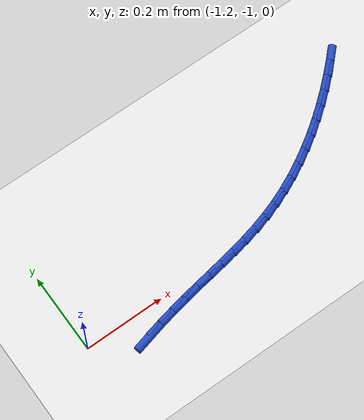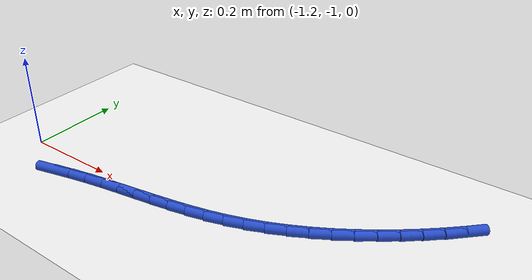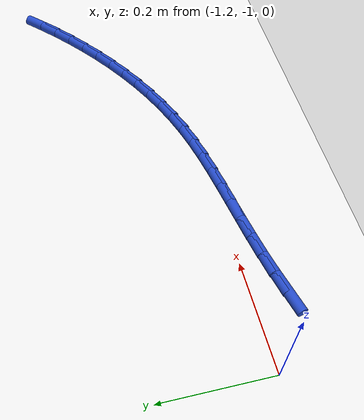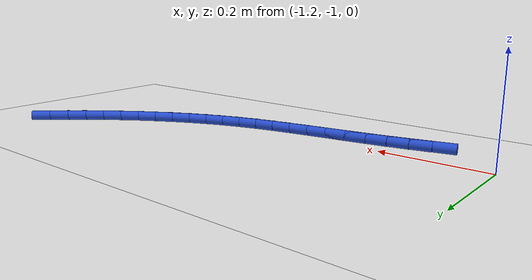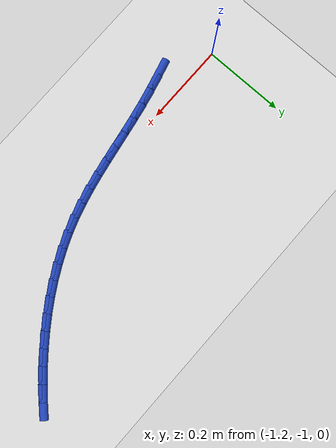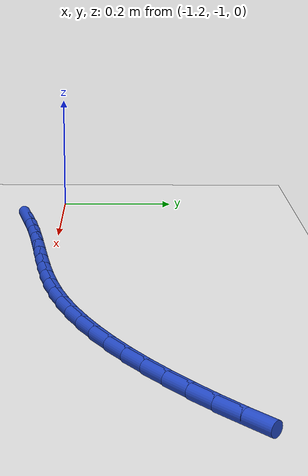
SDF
<sdf version="1.6">
 <world name="default">
  <model name="ground_plane">
   <static>1</static>
   <link name="link">
    <collision name="collision">
     <geometry><plane><normal>0 0 1</normal><size>100 100</size></plane></geometry>
     <surface><friction><ode><mu>100</mu><mu2>50</mu2></ode></friction></surface>
    </collision>
    <visual name="visual">
     <cast_shadows>0</cast_shadows>
     <geometry><plane><normal>0 0 1</normal><size>100 100</size></plane></geometry>
     <material>
      <script><uri>file://media/materials/scripts/gazebo.material</uri><name>Gazebo/WhiteGlow</name></script>
     </material>
    </visual>
   </link>
  </model>
  <model name="line">
   <link name="link_127">
    <pose>-1.0753905970154458 -1.0602221454270837 0.01 0 1.57 0.2446414388735093</pose>
    <collision name="collision">
     <geometry><cylinder><radius>0.01</radius><length>0.08</length></cylinder></geometry>
    </collision>
    <visual name="visual">
     <material>
      <script><name>Gazebo/Blue</name><uri>file://media/materials/scripts/gazebo.material</uri></script>
     </material>
     <geometry><cylinder><radius>0.01</radius><length>0.08</length></cylinder></geometry>
    </visual>
   </link>
   <link name="link_128">
    <pose>-1.0359513318143347 -1.0503764590551607 0.01 0 1.57 0.21848661092332922</pose>
    <collision name="collision">
     <geometry><cylinder><radius>0.01</radius><length>0.08</length></cylinder></geometry>
    </collision>
    <visual name="visual">
     <material>
      <script><name>Gazebo/Blue</name><uri>file://media/materials/scripts/gazebo.material</uri></script>
     </material>
     <geometry><cylinder><radius>0.01</radius><length>0.08</length></cylinder></geometry>
    </visual>
   </link>
   <link name="link_129">
    <pose>-0.9967384514135729 -1.0416699882878897 0.01 0 1.57 0.1916154545095524</pose>
    <collision name="collision">
     <geometry><cylinder><radius>0.01</radius><length>0.08</length></cylinder></geometry>
    </collision>
    <visual name="visual">
     <material>
      <script><name>Gazebo/Blue</name><uri>file://media/materials/scripts/gazebo.material</uri></script>
     </material>
     <geometry><cylinder><radius>0.01</radius><length>0.08</length></cylinder></geometry>
    </visual>
   </link>
   <link name="link_130">
    <pose>-0.9578282462225324 -1.03412158105417 0.01 0 1.57 0.17374351097224258</pose>
    <collision name="collision">
     <geometry><cylinder><radius>0.01</radius><length>0.08</length></cylinder></geometry>
    </collision>
    <visual name="visual">
     <material>
      <script><name>Gazebo/Blue</name><uri>file://media/materials/scripts/gazebo.material</uri></script>
     </material>
     <geometry><cylinder><radius>0.01</radius><length>0.08</length></cylinder></geometry>
    </visual>
   </link>
   <link name="link_131">
    <pose>-0.9192453555109423 -1.027349776918828 0.01 0 1.57 0.16540925854999883</pose>
    <collision name="collision">
     <geometry><cylinder><radius>0.01</radius><length>0.08</length></cylinder></geometry>
    </collision>
    <visual name="visual">
     <material>
      <script><name>Gazebo/Blue</name><uri>file://media/materials/scripts/gazebo.material</uri></script>
     </material>
     <geometry><cylinder><radius>0.01</radius><length>0.08</length></cylinder></geometry>
    </visual>
   </link>
   <link name="link_132">
    <pose>-0.8810137063531301 -1.0209675957664144 0.01 0 1.57 0.16695045699998512</pose>
    <collision name="collision">
     <geometry><cylinder><radius>0.01</radius><length>0.08</length></cylinder></geometry>
    </collision>
    <visual name="visual">
     <material>
      <script><name>Gazebo/Blue</name><uri>file://media/materials/scripts/gazebo.material</uri></script>
     </material>
     <geometry><cylinder><radius>0.01</radius><length>0.08</length></cylinder></geometry>
    </visual>
   </link>
   <link name="link_133">
    <pose>-0.8431572258234206 -1.0145880574814785 0.01 0 1.57 0.17865005076567997</pose>
    <collision name="collision">
     <geometry><cylinder><radius>0.01</radius><length>0.08</length></cylinder></geometry>
    </collision>
    <visual name="visual">
     <material>
      <script><name>Gazebo/Blue</name><uri>file://media/materials/scripts/gazebo.material</uri></script>
     </material>
     <geometry><cylinder><radius>0.01</radius><length>0.08</length></cylinder></geometry>
    </visual>
   </link>
   <link name="link_134">
    <pose>-0.8056998409961406 -1.0078241819485714 0.01 0 1.57 0.20072496692861364</pose>
    <collision name="collision">
     <geometry><cylinder><radius>0.01</radius><length>0.08</length></cylinder></geometry>
    </collision>
    <visual name="visual">
     <material>
      <script><name>Gazebo/Blue</name><uri>file://media/materials/scripts/gazebo.material</uri></script>
     </material>
     <geometry><cylinder><radius>0.01</radius><length>0.08</length></cylinder></geometry>
    </visual>
   </link>
   <link name="link_135">
    <pose>-0.7686654789456158 -1.0002889890522428 0.01 0 1.57 0.2332827698555533</pose>
    <collision name="collision">
     <geometry><cylinder><radius>0.01</radius><length>0.08</length></cylinder></geometry>
    </collision>
    <visual name="visual">
     <material>
      <script><name>Gazebo/Blue</name><uri>file://media/materials/scripts/gazebo.material</uri></script>
     </material>
     <geometry><cylinder><radius>0.01</radius><length>0.08</length></cylinder></geometry>
    </visual>
   </link>
   <link name="link_136">
    <pose>-0.7320780667461717 -0.9915954986770434 0.01 0 1.57 0.2762443799120441</pose>
    <collision name="collision">
     <geometry><cylinder><radius>0.01</radius><length>0.08</length></cylinder></geometry>
    </collision>
    <visual name="visual">
     <material>
      <script><name>Gazebo/Blue</name><uri>file://media/materials/scripts/gazebo.material</uri></script>
     </material>
     <geometry><cylinder><radius>0.01</radius><length>0.08</length></cylinder></geometry>
    </visual>
   </link>
   <link name="link_137">
    <pose>-0.695961531472136 -0.9813567307075234 0.01 0 1.57 0.32859518819931266</pose>
    <collision name="collision">
     <geometry><cylinder><radius>0.01</radius><length>0.08</length></cylinder></geometry>
    </collision>
    <visual name="visual">
     <material>
      <script><name>Gazebo/Blue</name><uri>file://media/materials/scripts/gazebo.material</uri></script>
     </material>
     <geometry><cylinder><radius>0.01</radius><length>0.08</length></cylinder></geometry>
    </visual>
   </link>
   <link name="link_138">
    <pose>-0.6603403828868466 -0.9692114866384136 0.01 0 1.57 0.38266561041639147</pose>
    <collision name="collision">
     <geometry><cylinder><radius>0.01</radius><length>0.08</length></cylinder></geometry>
    </collision>
    <visual name="visual">
     <material>
      <script><name>Gazebo/Blue</name><uri>file://media/materials/scripts/gazebo.material</uri></script>
     </material>
     <geometry><cylinder><radius>0.01</radius><length>0.08</length></cylinder></geometry>
    </visual>
   </link>
   <link name="link_139">
    <pose>-0.6252456180044683 -0.9550856023316668 0.01 0 1.57 0.43390810572431826</pose>
    <collision name="collision">
     <geometry><cylinder><radius>0.01</radius><length>0.08</length></cylinder></geometry>
    </collision>
    <visual name="visual">
     <material>
      <script><name>Gazebo/Blue</name><uri>file://media/materials/scripts/gazebo.material</uri></script>
     </material>
     <geometry><cylinder><radius>0.01</radius><length>0.08</length></cylinder></geometry>
    </visual>
   </link>
   <link name="link_140">
    <pose>-0.5907122870149611 -0.9390842501325081 0.01 0 1.57 0.48233985325401263</pose>
    <collision name="collision">
     <geometry><cylinder><radius>0.01</radius><length>0.08</length></cylinder></geometry>
    </collision>
    <visual name="visual">
     <material>
      <script><name>Gazebo/Blue</name><uri>file://media/materials/scripts/gazebo.material</uri></script>
     </material>
     <geometry><cylinder><radius>0.01</radius><length>0.08</length></cylinder></geometry>
    </visual>
   </link>
   <link name="link_141">
    <pose>-0.5567755019648215 -0.9213153392854077 0.01 0 1.57 0.528087205657602</pose>
    <collision name="collision">
     <geometry><cylinder><radius>0.01</radius><length>0.08</length></cylinder></geometry>
    </collision>
    <visual name="visual">
     <material>
      <script><name>Gazebo/Blue</name><uri>file://media/materials/scripts/gazebo.material</uri></script>
     </material>
     <geometry><cylinder><radius>0.01</radius><length>0.08</length></cylinder></geometry>
    </visual>
   </link>
   <link name="link_142">
    <pose>-0.523470374900545 -0.9018867790348346 0.01 0 1.57 0.5713049483004274</pose>
    <collision name="collision">
     <geometry><cylinder><radius>0.01</radius><length>0.08</length></cylinder></geometry>
    </collision>
    <visual name="visual">
     <material>
      <script><name>Gazebo/Blue</name><uri>file://media/materials/scripts/gazebo.material</uri></script>
     </material>
     <geometry><cylinder><radius>0.01</radius><length>0.08</length></cylinder></geometry>
    </visual>
   </link>
   <link name="link_143">
    <pose>-0.4908320178686295 -0.8809064786252601 0.01 0 1.57 0.6121661063324303</pose>
    <collision name="collision">
     <geometry><cylinder><radius>0.01</radius><length>0.08</length></cylinder></geometry>
    </collision>
    <visual name="visual">
     <material>
      <script><name>Gazebo/Blue</name><uri>file://media/materials/scripts/gazebo.material</uri></script>
     </material>
     <geometry><cylinder><radius>0.01</radius><length>0.08</length></cylinder></geometry>
    </visual>
   </link>
   <link name="link_144">
    <pose>-0.45889554291557055 -0.8584823473011532 0.01 0 1.57 0.650854013786083</pose>
    <collision name="collision">
     <geometry><cylinder><radius>0.01</radius><length>0.08</length></cylinder></geometry>
    </collision>
    <visual name="visual">
     <material>
      <script><name>Gazebo/Blue</name><uri>file://media/materials/scripts/gazebo.material</uri></script>
     </material>
     <geometry><cylinder><radius>0.01</radius><length>0.08</length></cylinder></geometry>
    </visual>
   </link>
   <link name="link_145">
    <pose>-0.4276960620878648 -0.8347222943069845 0.01 0 1.57 0.6875564552749759</pose>
    <collision name="collision">
     <geometry><cylinder><radius>0.01</radius><length>0.08</length></cylinder></geometry>
    </collision>
    <visual name="visual">
     <material>
      <script><name>Gazebo/Blue</name><uri>file://media/materials/scripts/gazebo.material</uri></script>
     </material>
     <geometry><cylinder><radius>0.01</radius><length>0.08</length></cylinder></geometry>
    </visual>
   </link>
   <link name="link_146">
    <pose>-0.3972686874320082 -0.8097342288872234 0.01 0 1.57 0.7224615938726282</pose>
    <collision name="collision">
     <geometry><cylinder><radius>0.01</radius><length>0.08</length></cylinder></geometry>
    </collision>
    <visual name="visual">
     <material>
      <script><name>Gazebo/Blue</name><uri>file://media/materials/scripts/gazebo.material</uri></script>
     </material>
     <geometry><cylinder><radius>0.01</radius><length>0.08</length></cylinder></geometry>
    </visual>
   </link>
   <link name="link_147">
    <pose>-0.3676485309944973 -0.7836260602863397 0.01 0 1.57 0.7557553757389166</pose>
    <collision name="collision">
     <geometry><cylinder><radius>0.01</radius><length>0.08</length></cylinder></geometry>
    </collision>
    <visual name="visual">
     <material>
      <script><name>Gazebo/Blue</name><uri>file://media/materials/scripts/gazebo.material</uri></script>
     </material>
     <geometry><cylinder><radius>0.01</radius><length>0.08</length></cylinder></geometry>
    </visual>
   </link>
   <link name="link_148">
    <pose>-0.33887070482182896 -0.7565056977488045 0.01 0 1.57 0.7876201230720922</pose>
    <collision name="collision">
     <geometry><cylinder><radius>0.01</radius><length>0.08</length></cylinder></geometry>
    </collision>
    <visual name="visual">
     <material>
      <script><name>Gazebo/Blue</name><uri>file://media/materials/scripts/gazebo.material</uri></script>
     </material>
     <geometry><cylinder><radius>0.01</radius><length>0.08</length></cylinder></geometry>
    </visual>
   </link>
  </model>
 </world>
</sdf>
